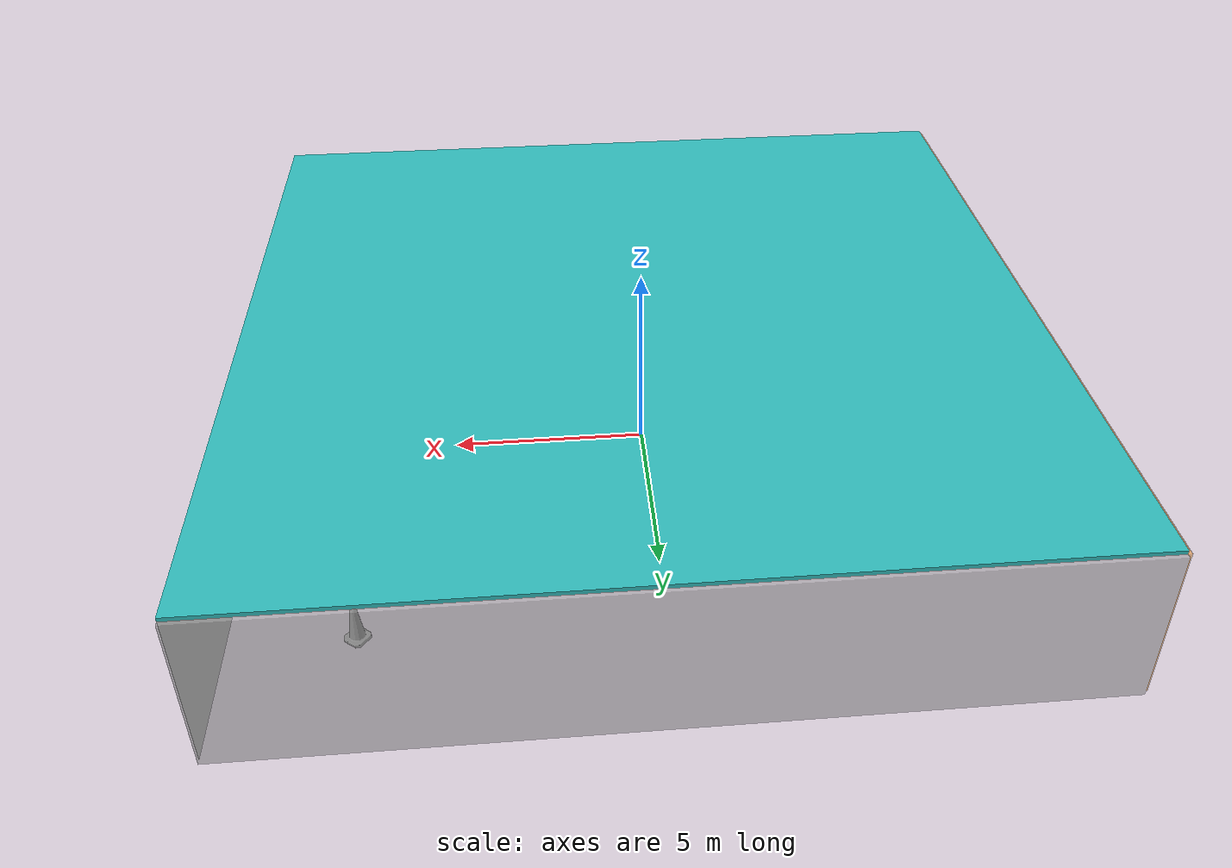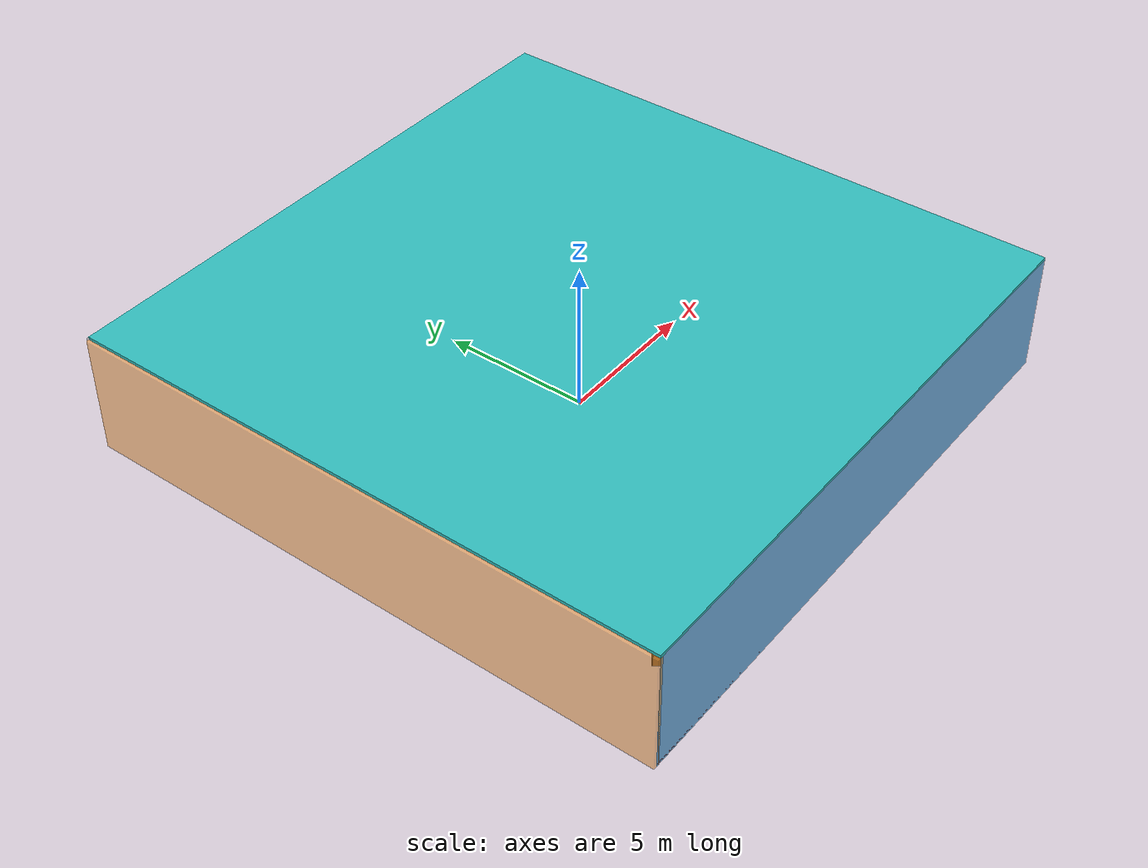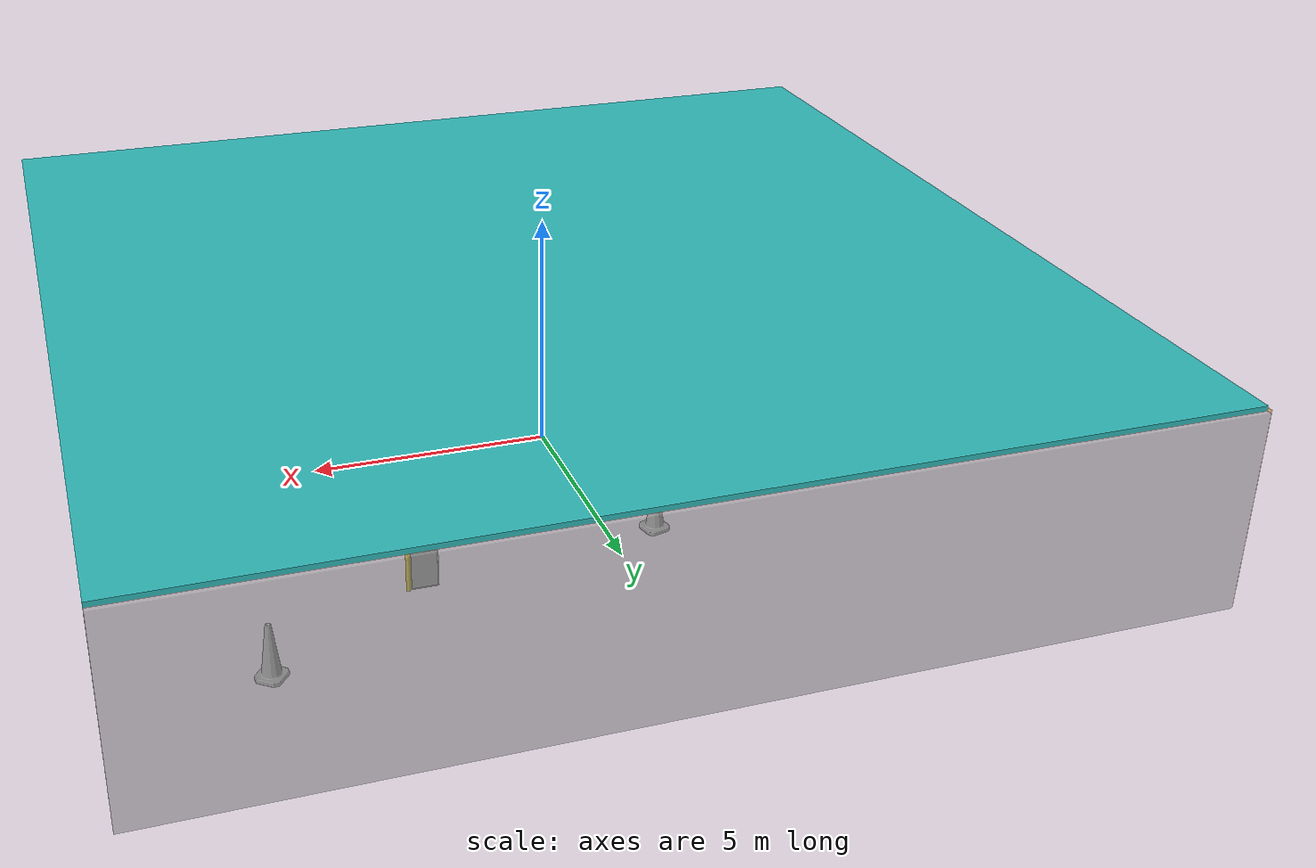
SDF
<sdf version="1.4">
 <world name="default">
  <physics type="ode">
   <max_step_size>0.001</max_step_size>
   <real_time_factor>1</real_time_factor>
   <real_time_update_rate>1000</real_time_update_rate>
   <gravity>0 0 -9.8</gravity>
  </physics>
  <scene><ambient>0.4 0.4 0.4 1</ambient><background>0.7 0.7 0.7 1</background><shadows>1</shadows></scene>
  <model name="Surrounding">
   <static>1</static>
   <link name="Ceiling">
    <collision name="Ceiling_Collision"><geometry><box><size>20 20 0.1</size></box></geometry></collision>
    <visual name="Ceiling_Visual">
     <geometry><box><size>20 20 0.1</size></box></geometry>
     <material>
      <script><uri>file://media/materials/scripts/gazebo.material</uri><name>Gazebo/TurquoiseGlow</name></script>
     </material>
    </visual>
    <pose>0 0 4.05 0 0 0</pose>
   </link>
   <link name="Wall_South">
    <collision name="Wall_South_Collision">
     <geometry><box><size>20 0 4</size></box></geometry>
     <pose>0 0 2 0 -0 0</pose>
    </collision>
    <visual name="Wall_South_Visual">
     <pose>0 0 2 0 -0 0</pose>
     <geometry><box><size>20 0 4</size></box></geometry>
     <material>
      <script><uri>file://media/materials/scripts/gazebo.material</uri><name>Gazebo/SkyBlue</name></script>
     </material>
    </visual>
    <velocity_decay><linear>0</linear><angular>0</angular></velocity_decay>
    <pose>0 -10 0 0 -0 0</pose>
   </link>
   <link name="Wall_East">
    <collision name="Wall_21_Collision">
     <geometry><box><size>20 0 4</size></box></geometry>
     <pose>0 0 2 0 -0 0</pose>
    </collision>
    <visual name="Wall_21_Visual">
     <pose>0 0 2 0 -0 0</pose>
     <geometry><box><size>20 0 4</size></box></geometry>
     <material>
      <script><uri>file://media/materials/scripts/gazebo.material</uri><name>Gazebo/WhiteGlow</name></script>
     </material>
    </visual>
    <velocity_decay><linear>0</linear><angular>0</angular></velocity_decay>
    <pose>10 0 0 0 -0 1.5708</pose>
   </link>
   <link name="Wall_North">
    <collision name="Wall_22_Collision">
     <geometry><box><size>20 0.2 4</size></box></geometry>
     <pose>0 0 2 0 -0 0</pose>
    </collision>
    <visual name="Wall_22_Visual">
     <pose>0 0 2 0 -0 0</pose>
     <geometry><box><size>20 0.2 4</size></box></geometry>
     <material>
      <script><uri>file://media/materials/scripts/gazebo.material</uri><name>Gazebo/GreyTransparent</name></script>
     </material>
    </visual>
    <velocity_decay><linear>0</linear><angular>0</angular></velocity_decay>
    <pose>0 10 0 0 -0 0</pose>
   </link>
   <link name="Wall_West">
    <collision name="Wall_23_Collision">
     <geometry><box><size>20 0.2 4</size></box></geometry>
     <pose>0 0 2 0 -0 0</pose>
    </collision>
    <visual name="Wall_23_Visual">
     <pose>0 0 2 0 -0 0</pose>
     <geometry><box><size>20 0.2 4</size></box></geometry>
     <material>
      <script>
       <uri>file://media/materials/scripts/gazebo.material</uri>
       <name>Gazebo/OrangeTransparent</name>
      </script>
     </material>
    </visual>
    <velocity_decay><linear>0</linear><angular>0</angular></velocity_decay>
    <pose>-10 0 0 0 0 -1.5708</pose>
   </link>
   <link name="Ground_link">
    <collision name="collision">
     <pose>0 0 .05 0 -0 0</pose>
     <geometry><box><size>20 20 0.1</size></box></geometry>
    </collision>
    <visual name="visual">
     <pose>0 0 .05 0 -0 0</pose>
     <geometry><box><size>20 20 0.1</size></box></geometry>
     <material>
      <script><uri>file://media/materials/scripts/gazebo.material</uri><name>Gazebo/RedTransparent</name></script>
     </material>
    </visual>
   </link>
   <static>1</static>
  </model>
  <spherical_coordinates>
   <surface_model>EARTH_WGS84</surface_model>
   <latitude_deg>0</latitude_deg>
   <longitude_deg>0</longitude_deg>
   <elevation>0</elevation>
   <heading_deg>0</heading_deg>
  </spherical_coordinates>
  <light name="lightball_0" type="diffuse">
   <diffuse>0.8 0.8 0.8 1</diffuse>
   <specular>0.2 0.2 0.2 1</specular>
   <attenuation>
    <range>100</range>
    <constant>0.7</constant>
    <linear>0.01</linear>
    <quadratic>0.001</quadratic>
   </attenuation>
   <direction>-0.5 0.1 -0.9</direction>
   <pose>-7.42972565967 9.42492179076 1.90998565824 0 0 0</pose>
  </light>
  <light name="lightball_1" type="diffuse">
   <diffuse>0.8 0.8 0.8 1</diffuse>
   <specular>0.2 0.2 0.2 1</specular>
   <attenuation>
    <range>100</range>
    <constant>0.7</constant>
    <linear>0.01</linear>
    <quadratic>0.001</quadratic>
   </attenuation>
   <direction>-0.5 0.1 -0.9</direction>
   <pose>6.58280868274 8.97414292572 3.77596624079 0 0 0</pose>
  </light>
  <light name="lightball_2" type="diffuse">
   <diffuse>0.8 0.8 0.8 1</diffuse>
   <specular>0.2 0.2 0.2 1</specular>
   <attenuation>
    <range>100</range>
    <constant>0.7</constant>
    <linear>0.01</linear>
    <quadratic>0.001</quadratic>
   </attenuation>
   <direction>-0.5 0.1 -0.9</direction>
   <pose>1.54324088614 3.47343420884 1.66134484341 0 0 0</pose>
  </light>
  <light name="lightball_3" type="diffuse">
   <diffuse>0.8 0.8 0.8 1</diffuse>
   <specular>0.2 0.2 0.2 1</specular>
   <attenuation>
    <range>100</range>
    <constant>0.7</constant>
    <linear>0.01</linear>
    <quadratic>0.001</quadratic>
   </attenuation>
   <direction>-0.5 0.1 -0.9</direction>
   <pose>-6.57480505926 9.86054553943 0.794406576854 0 0 0</pose>
  </light>
  <light name="lightball_4" type="diffuse">
   <diffuse>0.8 0.8 0.8 1</diffuse>
   <specular>0.2 0.2 0.2 1</specular>
   <attenuation>
    <range>100</range>
    <constant>0.7</constant>
    <linear>0.01</linear>
    <quadratic>0.001</quadratic>
   </attenuation>
   <direction>-0.5 0.1 -0.9</direction>
   <pose>-8.7869534398 -0.0572111139285 2.65354233945 0 0 0</pose>
  </light>
  <light name="lightball_5" type="diffuse">
   <diffuse>0.8 0.8 0.8 1</diffuse>
   <specular>0.2 0.2 0.2 1</specular>
   <attenuation>
    <range>100</range>
    <constant>0.7</constant>
    <linear>0.01</linear>
    <quadratic>0.001</quadratic>
   </attenuation>
   <direction>-0.5 0.1 -0.9</direction>
   <pose>8.75345835449 3.86542016435 0.996405119217 0 0 0</pose>
  </light>
  <light name="lightball_6" type="diffuse">
   <diffuse>0.8 0.8 0.8 1</diffuse>
   <specular>0.2 0.2 0.2 1</specular>
   <attenuation>
    <range>100</range>
    <constant>0.7</constant>
    <linear>0.01</linear>
    <quadratic>0.001</quadratic>
   </attenuation>
   <direction>-0.5 0.1 -0.9</direction>
   <pose>-7.37484446364 -9.31843062735 2.90568081736 0 0 0</pose>
  </light>
  <light name="lightball_7" type="diffuse">
   <diffuse>0.8 0.8 0.8 1</diffuse>
   <specular>0.2 0.2 0.2 1</specular>
   <attenuation>
    <range>100</range>
    <constant>0.7</constant>
    <linear>0.01</linear>
    <quadratic>0.001</quadratic>
   </attenuation>
   <direction>-0.5 0.1 -0.9</direction>
   <pose>3.36275266906 3.66617791791 2.42664880664 0 0 0</pose>
  </light>
  <light name="lightball_8" type="diffuse">
   <diffuse>0.8 0.8 0.8 1</diffuse>
   <specular>0.2 0.2 0.2 1</specular>
   <attenuation>
    <range>100</range>
    <constant>0.7</constant>
    <linear>0.01</linear>
    <quadratic>0.001</quadratic>
   </attenuation>
   <direction>-0.5 0.1 -0.9</direction>
   <pose>2.48604106853 9.7127350157 0.962671439353 0 0 0</pose>
  </light>
  <light name="lightball_9" type="diffuse">
   <diffuse>0.8 0.8 0.8 1</diffuse>
   <specular>0.2 0.2 0.2 1</specular>
   <attenuation>
    <range>100</range>
    <constant>0.7</constant>
    <linear>0.01</linear>
    <quadratic>0.001</quadratic>
   </attenuation>
   <direction>-0.5 0.1 -0.9</direction>
   <pose>3.57776855782 6.68835193748 1.21717180708 0 0 0</pose>
  </light>
  <light name="lightball_10" type="diffuse">
   <diffuse>0.8 0.8 0.8 1</diffuse>
   <specular>0.2 0.2 0.2 1</specular>
   <attenuation>
    <range>100</range>
    <constant>0.7</constant>
    <linear>0.01</linear>
    <quadratic>0.001</quadratic>
   </attenuation>
   <direction>-0.5 0.1 -0.9</direction>
   <pose>-7.54275533943 -1.65544484653 3.54225092558 0 0 0</pose>
  </light>
  <include><uri>model://cabinet</uri><pose>-7.01350582 -8.01857554881 0 0 0 2.21770055411</pose></include>
  <include>
   <uri>model://construction_cone</uri>
   <pose>-0.954132642026 4.27208979015 0 0 0 1.81290853276</pose>
  </include>
  <include><uri>model://cabinet</uri><pose>2.02514623029 -6.98652998163 0 0 0 1.36661192542</pose></include>
  <include><uri>model://cabinet</uri><pose>4.73307199727 1.16133804269 0 0 0 2.28483108281</pose></include>
  <include>
   <uri>model://robocup_3Dsim_goal</uri>
   <pose>4.16605579862 3.90105586601 0 0 0 3.13225561158</pose>
  </include>
  <include>
   <uri>model://construction_cone</uri>
   <pose>7.05745590116 6.87945834627 0 0 0 2.46985988271</pose>
  </include>
 </world>
</sdf>

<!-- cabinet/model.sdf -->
<sdf version="1.5">
  <model name="cabinet">
    <static>true</static>
    <link name="cabinet_bottom_plate">
      <inertial>
        <pose>0 0 -1 0 0 0</pose>
        <inertia>
          <ixx>2.050000</ixx>
          <ixy>0</ixy>
          <ixz>0</ixz>
          <iyy>2.050000</iyy>
          <iyz>0</iyz>
          <izz>2.050000</izz>
        </inertia>
        <mass>25.000000</mass>
      </inertial>
      <collision name="cabinet_bottom_plate_geom">
        <pose>0 0 0.010000 0 0 0</pose>
        <geometry>
          <box>
            <size>0.450000 0.450000 0.020000</size>
          </box>
        </geometry>
      </collision>
      <visual name="cabinet_bottom_plate_geom_visual">
        <pose>0 0 0.010000 0 0 0</pose>
        <geometry>
          <box>
            <size>0.450000 0.450000 0.020000</size>
          </box>
        </geometry>
        <material>
          <script>
            <uri>model://media/materials/scripts/gazebo.material</uri>
            <name>Gazebo/Wood</name>
          </script>
        </material>
      </visual>
      <collision name="cabinet_bottom_plate_geom_cabinet_back_plate">
        <pose>0.235000 0 0.510000 0 0 0</pose>
        <geometry>
          <box>
            <size>0.020000 0.450000 1.020000</size>
          </box>
        </geometry>
      </collision>
      <visual name="cabinet_bottom_plate_geom_cabinet_back_plate_visual">
        <pose>0.235000 0 0.510000 0 0 0</pose>
        <geometry>
          <box>
            <size>0.020000 0.450000 1.020000</size>
          </box>
        </geometry>
        <material>
          <script>
            <uri>model://media/materials/scripts/gazebo.material</uri>
            <name>Gazebo/Wood</name>
          </script>
        </material>
      </visual>
      <collision name="cabinet_bottom_plate_geom_cabinet_left_plate">
        <pose>0 0.235000 0.510000 0 0 0</pose>
        <geometry>
          <box>
            <size>0.450000 0.020000 1.020000</size>
          </box>
        </geometry>
      </collision>
      <visual name="cabinet_bottom_plate_geom_cabinet_left_plate_visual">
        <pose>0 0.235000 0.510000 0 0 0</pose>
        <geometry>
          <box>
            <size>0.450000 0.020000 1.020000</size>
          </box>
        </geometry>
        <material>
          <script>
            <uri>model://media/materials/scripts/gazebo.material</uri>
            <name>Gazebo/Wood</name>
          </script>
        </material>
      </visual>
      <collision name="cabinet_bottom_plate_geom_cabinet_middle_plate">
        <pose>0 0 0.510000 0 0 0</pose>
        <geometry>
          <box>
            <size>0.450000 0.450000 0.020000</size>
          </box>
        </geometry>
      </collision>
      <visual name="cabinet_bottom_plate_geom_cabinet_middle_plate_visual">
        <pose>0 0 0.510000 0 0 0</pose>
        <geometry>
          <box>
            <size>0.450000 0.450000 0.020000</size>
          </box>
        </geometry>
        <material>
          <script>
            <uri>model://media/materials/scripts/gazebo.material</uri>
            <name>Gazebo/Wood</name>
          </script>
        </material>
      </visual>
      <collision name="cabinet_bottom_plate_geom_cabinet_right_plate">
        <pose>0 -0.235000 0.510000 0 0 0</pose>
        <geometry>
          <box>
            <size>0.450000 0.020000 1.020000</size>
          </box>
        </geometry>
      </collision>
      <visual name="cabinet_bottom_plate_geom_cabinet_right_plate_visual">
        <pose>0 -0.235000 0.510000 0 0 0</pose>
        <geometry>
          <box>
            <size>0.450000 0.020000 1.020000</size>
          </box>
        </geometry>
        <material>
          <script>
            <uri>model://media/materials/scripts/gazebo.material</uri>
            <name>Gazebo/Wood</name>
          </script>
        </material>
      </visual>
      <collision name="cabinet_bottom_plate_geom_cabinet_top_plate">
        <pose>0 0 1.010000 0 0 0</pose>
        <geometry>
          <box>
            <size>0.450000 0.450000 0.020000</size>
          </box>
        </geometry>
      </collision>
      <visual name="cabinet_bottom_plate_geom_cabinet_top_plate_visual">
        <pose>0 0 1.010000 0 0 0</pose>
        <geometry>
          <box>
            <size>0.450000 0.450000 0.020000</size>
          </box>
        </geometry>
        <material>
          <script>
            <uri>model://media/materials/scripts/gazebo.material</uri>
            <name>Gazebo/Wood</name>
          </script>
        </material>
      </visual>
    </link>
  </model>
</sdf>

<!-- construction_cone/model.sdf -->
<sdf version="1.5">
  <model name="Construction Cone">
    <link name="link">
      <collision name="collision">
        <geometry>
          <mesh>
            <scale>10 10 10</scale>
            <uri>file://isr-testbed/construction_cone/meshes/construction_cone.dae</uri>
          </mesh>
        </geometry>
      </collision>
      <visual name="visual">
        <geometry>
          <mesh>
            <scale>10 10 10</scale>
            <uri>file://isr-testbed/construction_cone/meshes/construction_cone.dae</uri>
          </mesh>
        </geometry>
      </visual>
    </link>
  </model>
</sdf>

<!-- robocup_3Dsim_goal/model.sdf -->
<sdf version="1.5">
  <model name="robocup_3d_goal">
    <static>true</static>
    <link name="left_post">
      <pose>0 1.05 0.45 0 0 0</pose>
      <collision name="collision">
        <geometry>
          <cylinder>
            <radius>0.05</radius>
            <length>0.9</length>
          </cylinder>
        </geometry>
      </collision>
      <visual name="visual">
        <geometry>
          <cylinder>
            <radius>0.05</radius>
            <length>0.9</length>
          </cylinder>
        </geometry>
        <material>
          <script>
            <uri>file://media/materials/scripts/gazebo.material</uri>
            <name>Gazebo/ZincYellow</name>
          </script>
        </material>
      </visual>
    </link>
    <link name="left_support_horiz_lower">
      <pose>0.30 1.05 0.01 0 0 0</pose>
      <collision name="collision">
        <geometry>
          <box>
            <size>0.50 0.02 0.02</size>
          </box>
        </geometry>
      </collision>
      <visual name="visual">
        <geometry>
          <box>
            <size>0.50 0.02 0.02</size>
          </box>
        </geometry>
        <material>
          <script>
            <uri>file://media/materials/scripts/gazebo.material</uri>
            <name>Gazebo/White</name>
          </script>
        </material>
      </visual>
    </link>
    <link name="left_support_horiz_upper">
      <pose>0.30 1.05 0.79 0 0 0</pose>
      <collision name="collision">
        <geometry>
          <box>
            <size>0.50 0.02 0.02</size>
          </box>
        </geometry>
      </collision>
      <visual name="visual">
        <geometry>
          <box>
            <size>0.50 0.02 0.02</size>
          </box>
        </geometry>
        <material>
          <script>
            <uri>file://media/materials/scripts/gazebo.material</uri>
            <name>Gazebo/White</name>
          </script>
        </material>
      </visual>
    </link>
    <link name="left_support_vertical">
      <pose>0.56 1.05 0.4 0 1.5708 0</pose>
      <collision name="collision">
        <geometry>
          <box>
            <size>0.80 0.02 0.02</size>
          </box>
        </geometry>
      </collision>
      <visual name="visual">
        <geometry>
          <box>
            <size>0.80 0.02 0.02</size>
          </box>
        </geometry>
        <material>
          <script>
            <uri>file://media/materials/scripts/gazebo.material</uri>
            <name>Gazebo/White</name>
          </script>
        </material>
      </visual>
    </link>
    <link name="right_support_horiz_lower">
      <pose>0.30 -1.05 0.01 0 0 0</pose>
      <collision name="collision">
        <geometry>
          <box>
            <size>0.50 0.02 0.02</size>
          </box>
        </geometry>
      </collision>
      <visual name="visual">
        <geometry>
          <box>
            <size>0.50 0.02 0.02</size>
          </box>
        </geometry>
        <material>
          <script>
            <uri>file://media/materials/scripts/gazebo.material</uri>
            <name>Gazebo/White</name>
          </script>
        </material>
      </visual>
    </link>
    <link name="right_support_horiz_upper">
      <pose>0.30 -1.05 0.79 0 0 0</pose>
      <collision name="collision">
        <geometry>
          <box>
            <size>0.50 0.02 0.02</size>
          </box>
        </geometry>
      </collision>
      <visual name="visual">
        <geometry>
          <box>
            <size>0.50 0.02 0.02</size>
          </box>
        </geometry>
        <material>
          <script>
            <uri>file://media/materials/scripts/gazebo.material</uri>
            <name>Gazebo/White</name>
          </script>
        </material>
      </visual>
    </link>
    <link name="right_support_vertical">
      <pose>0.56 -1.05 0.4 0 1.5708 0</pose>
      <collision name="collision">
        <geometry>
          <box>
            <size>0.80 0.02 0.02</size>
          </box>
        </geometry>
      </collision>
      <visual name="visual">
        <geometry>
          <box>
            <size>0.80 0.02 0.02</size>
          </box>
        </geometry>
        <material>
          <script>
            <uri>file://media/materials/scripts/gazebo.material</uri>
            <name>Gazebo/White</name>
          </script>
        </material>
      </visual>
    </link>
    <link name="center_support_horiz_lower">
      <pose>0.56 0 0.01 0 1.5708 0</pose>
      <collision name="collision">
        <geometry>
          <box>
            <size>0.02 2.08 0.02</size>
          </box>
        </geometry>
      </collision>
      <visual name="visual">
        <geometry>
          <box>
            <size>0.02 2.08 0.02</size>
          </box>
        </geometry>
        <material>
          <script>
            <uri>file://media/materials/scripts/gazebo.material</uri>
            <name>Gazebo/White</name>
          </script>
        </material>
      </visual>
    </link>
    <link name="center_support_horiz_upper">
      <pose>0.56 0 0.79 0 1.5708 0</pose>
      <collision name="collision">
        <geometry>
          <box>
            <size>0.02 2.08 0.02</size>
          </box>
        </geometry>
      </collision>
      <visual name="visual">
        <geometry>
          <box>
            <size>0.02 2.08 0.02</size>
          </box>
        </geometry>
        <material>
          <script>
            <uri>file://media/materials/scripts/gazebo.material</uri>
            <name>Gazebo/White</name>
          </script>
        </material>
      </visual>
    </link>
    <link name="right_post">
      <pose>0 -1.05 0.45 0 0 0</pose>
      <collision name="collision">
        <geometry>
          <cylinder>
            <radius>0.05</radius>
            <length>0.9</length>
          </cylinder>
        </geometry>
      </collision>
      <visual name="visual">
        <geometry>
          <cylinder>
            <radius>0.05</radius>
            <length>0.9</length>
          </cylinder>
        </geometry>
        <material>
          <script>
            <uri>file://media/materials/scripts/gazebo.material</uri>
            <name>Gazebo/ZincYellow</name>
          </script>
        </material>
      </visual>
    </link>
    <link name="crossbar">
      <pose>0 0 0.85 1.57 1.57 0</pose>
      <collision name="collision">
        <geometry>
          <cylinder>
            <radius>0.05</radius>
            <length>2.0</length>
          </cylinder>
        </geometry>
      </collision>
      <visual name="visual">
        <geometry>
          <cylinder>
            <radius>0.05</radius>
            <length>2.0</length>
          </cylinder>
        </geometry>
        <material>
          <script>
            <uri>file://media/materials/scripts/gazebo.material</uri>
            <name>Gazebo/ZincYellow</name>
          </script>
        </material>
      </visual>
    </link>
    <link name="center_net">
      <pose>0.56 0 0.40 0 0 0</pose>
      <collision name="collision">
        <geometry>
          <box>
            <size>0.01 2.1 0.80</size>
          </box>
        </geometry>
      </collision>
      <visual name="visual">
        <geometry>
          <box>
            <size>0.01 2.1 0.80</size>
          </box>
        </geometry>
        <material>
          <script>
            <uri>model://../model_source/models/robocup09_spl_field/materials/scripts/</uri>
            <uri>model://../model_source/models/robocup09_spl_field/materials/textures/</uri>
            <name>RoboCup/Net</name>
          </script>
        </material>
      </visual>
    </link>
    <link name="left_net">
      <pose>0.30 1.05 0.40 0 0 0</pose>
      <collision name="collision">
        <geometry>
          <box>
            <size>0.50 0.01 0.76</size>
          </box>
        </geometry>
      </collision>
      <visual name="visual">
        <geometry>
          <box>
            <size>0.50 0.01 0.76</size>
          </box>
        </geometry>
        <material>
          <script>
            <uri>model://../model_source/models/robocup09_spl_field/materials/scripts/</uri>
            <uri>model://../model_source/models/robocup09_spl_field/materials/textures/</uri>
            <name>RoboCup/Net</name>
          </script>
        </material>
      </visual>
    </link>
    <link name="right_net">
      <pose>0.30 -1.05 0.40 0 0 0</pose>
      <collision name="collision">
        <geometry>
          <box>
            <size>0.50 0.01 0.76</size>
          </box>
        </geometry>
      </collision>
      <visual name="visual">
        <geometry>
          <box>
            <size>0.50 0.01 0.76</size>
          </box>
        </geometry>
        <material>
          <script>
            <uri>model://../model_source/models/robocup09_spl_field/materials/scripts/</uri>
            <uri>model://../model_source/models/robocup09_spl_field/materials/textures/</uri>
            <name>RoboCup/Net</name>
          </script>
        </material>
      </visual>
    </link>
  </model>
</sdf>
